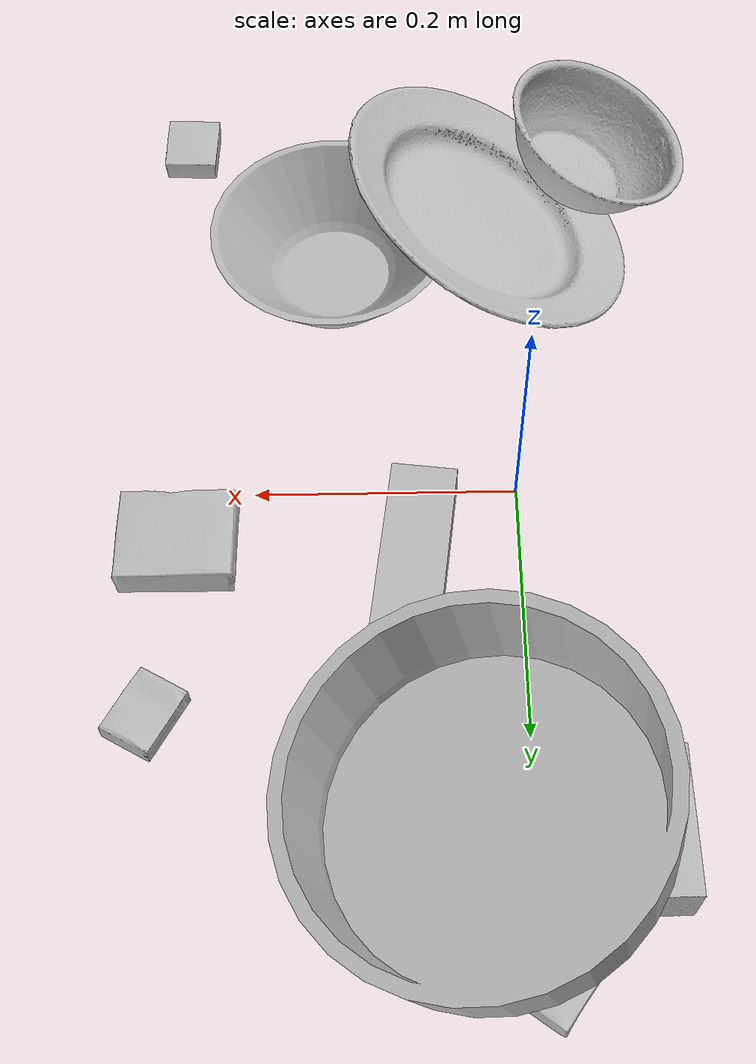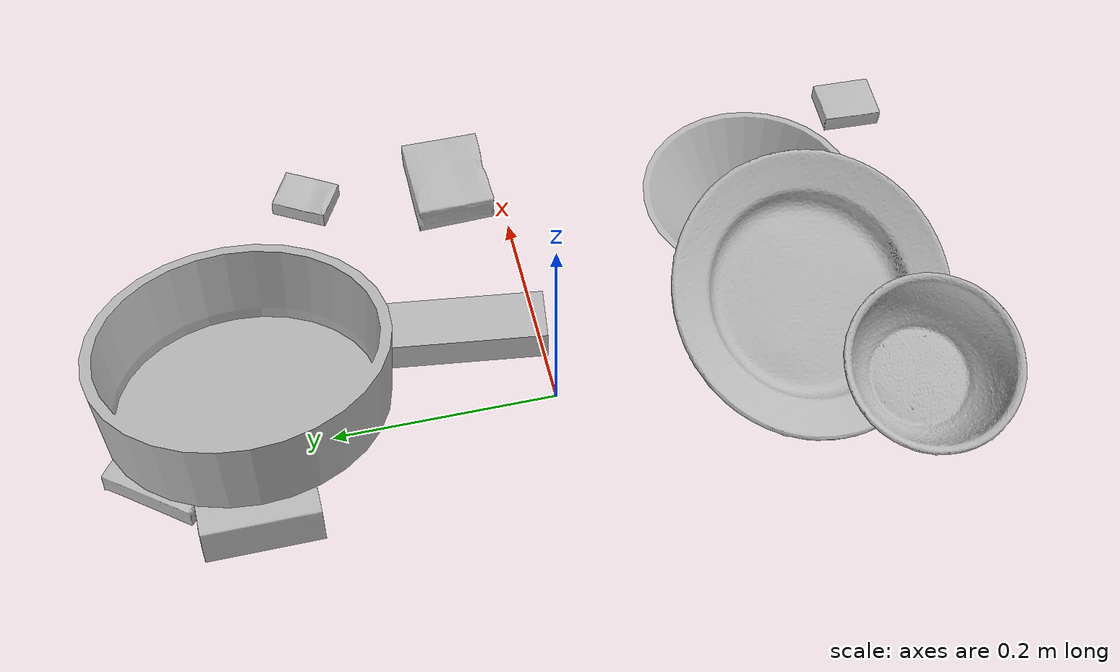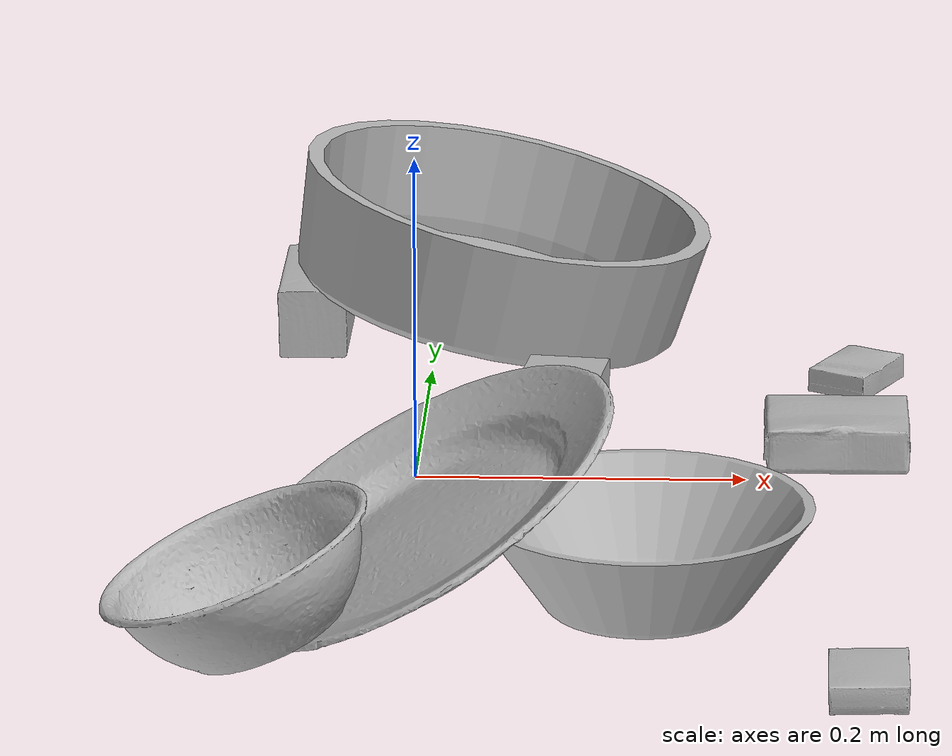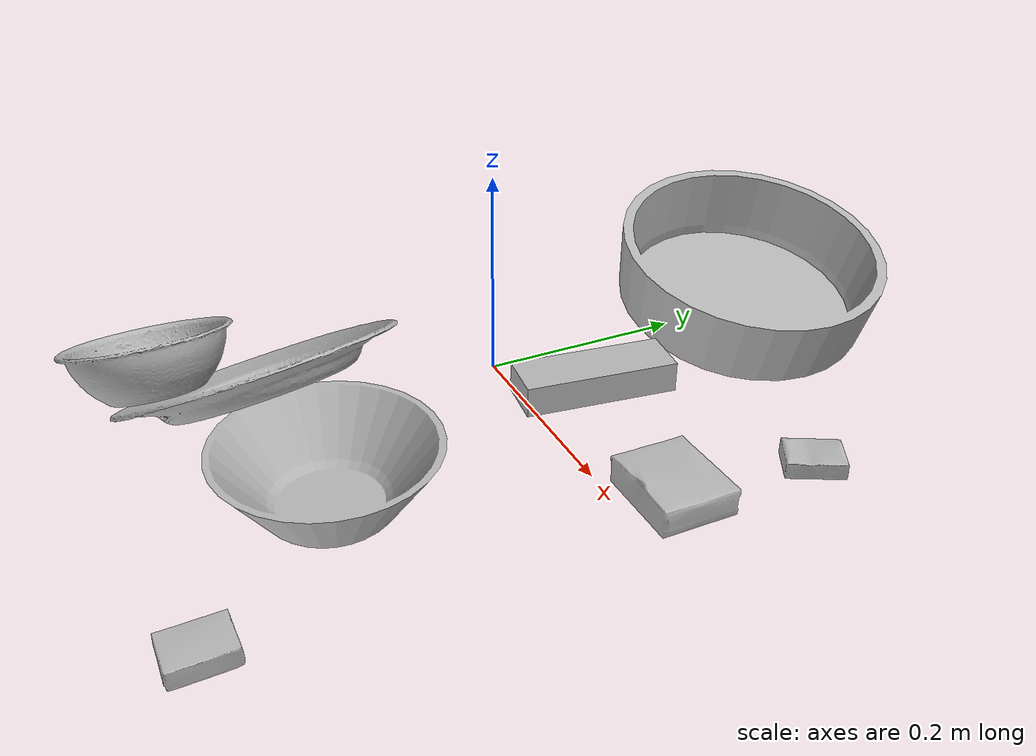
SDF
<sdf version="1.4">
  <world name="default">
    <light name="light1" type="point">
      <pose>0 0 1 0 0 0</pose>
      <diffuse>3 3 3 1</diffuse>
      <specular>3 3 3 1</specular>
    </light>
    <light name="light2" type="point">
      <pose>0 0.5 2 0 0 0</pose>
      <diffuse>1 1 1 1</diffuse>
      <specular>1 1 1 1</specular>
    </light>
    <light name="light3" type="point">
      <pose>0 0.5 2 0 0 0</pose>
      <diffuse>3 3 3 1</diffuse>
      <specular>3 3 3 1</specular>
    </light>
    <scene>
      <ambient>0.7 0.7 0.7</ambient>
    </scene>
    <model name="box1">
      <link name="link_box1">
        <collision name="default">
          <geometry>
            <mesh>
              <uri>model://jenga/collision_meshes/collision.obj</uri>
              <scale>1.0 1.0 1.0</scale>
            </mesh>
          </geometry>
          <surface>
            <friction>
              <ode>
                <mu>0.5</mu>
                <mu2>0.5</mu2>
              </ode>
            </friction>
          <contact>
        <ode>
            <max_vel>0</max_vel>
            <min_depth>0.0001</min_depth>
            <kp>1e8</kp>
        </ode>
    </contact></surface>
        </collision>
        <visual name="default">
          <geometry>
            <mesh>
              <uri>model://jenga/visual_meshes/visual.dae</uri>
              <scale>1.0 1.0 1.0</scale>
            </mesh>
          </geometry>
        </visual>
        <inertial>
          <mass>0.22956150770187378</mass>
          <pose>-2.502855807051674e-07 -0.00010250010382151231 -4.0923401684267446e-05 0.0 -7.34215461761844e-07 0.0</pose>
          <inertia>
            <ixx>6.3525236e-05</ixx>
            <iyy>0.00043044525</iyy>
            <izz>0.0004595369</izz>
            <ixy>0</ixy>
            <ixz>0</ixz>
            <iyz>0</iyz>
          </inertia>
        </inertial>
      </link>
      <pose>0.0795736238360405 0.06837090104818344 0.014999995008111 1.3732741174351192e-08 1.959952462467152e-09 1.4418614960566214</pose>
    </model>
    <model name="box11">
      <link name="link_box11">
        <collision name="default">
          <geometry>
            <mesh>
              <uri>model://gelatin_box/collision_meshes/collision.obj</uri>
              <scale>1.0 1.0 1.0</scale>
            </mesh>
          </geometry>
          <surface>
            <friction>
              <ode>
                <mu>0.5</mu>
                <mu2>0.5</mu2>
              </ode>
            </friction>
          <contact>
        <ode>
            <max_vel>0</max_vel>
            <min_depth>0.0001</min_depth>
            <kp>1e8</kp>
        </ode>
    </contact></surface>
        </collision>
        <visual name="default">
          <geometry>
            <mesh>
              <uri>model://gelatin_box/visual_meshes/visual.dae</uri>
              <scale>1.0 1.0 1.0</scale>
            </mesh>
          </geometry>
        </visual>
        <inertial>
          <mass>0.23979201912879944</mass>
          <pose>0.00043196187471039593 0.00011156872642459348 -0.0003640321083366871 -0.0010503717361155602 -0.00475581776093882 0.016440559470502904</pose>
          <inertia>
            <ixx>0.00016927361</ixx>
            <iyy>0.000120911245</iyy>
            <izz>0.00025767216</izz>
            <ixy>0</ixy>
            <ixz>0</ixz>
            <iyz>0</iyz>
          </inertia>
        </inertial>
      </link>
      <pose>0.25497278571128845 0.04610520228743553 0.015168312005698681 0.005597404583176885 -0.007304471870399134 -1.5768215413557267</pose>
    </model>
    <model name="box2">
      <link name="link_box2">
        <collision name="default">
          <geometry>
            <mesh>
              <uri>model://wood_block/collision_meshes/collision.obj</uri>
              <scale>0.5 0.5 0.5</scale>
            </mesh>
          </geometry>
          <surface>
            <friction>
              <ode>
                <mu>0.5</mu>
                <mu2>0.5</mu2>
              </ode>
            </friction>
          <contact>
        <ode>
            <max_vel>0</max_vel>
            <min_depth>0.0001</min_depth>
            <kp>1e8</kp>
        </ode>
    </contact></surface>
        </collision>
        <visual name="default">
          <geometry>
            <mesh>
              <uri>model://wood_block/visual_meshes/visual.dae</uri>
              <scale>0.5 0.5 0.5</scale>
            </mesh>
          </geometry>
        </visual>
        <inertial>
          <mass>0.1620619148015976</mass>
          <pose>-2.9066577553749084e-06 -0.000285404734313488 0.00013204291462898254 -0.05221116986778199 -0.0051926948812571205 -0.006861377876233232</pose>
          <inertia>
            <ixx>5.421584e-05</ixx>
            <iyy>0.00017126785</iyy>
            <izz>0.00017062723</izz>
            <ixy>0</ixy>
            <ixz>0</ixz>
            <iyz>0</iyz>
          </inertia>
        </inertial>
      </link>
      <pose>-0.07851849496364594 0.2736284136772156 0.022572308778762817 -0.006414173328867186 0.007708978730388556 1.575506523150168</pose>
    </model>
    <model name="box21">
      <link name="link_box21">
        <collision name="default">
          <geometry>
            <mesh>
              <uri>model://cracker_box/collision_meshes/collision.obj</uri>
              <scale>0.25 0.25 0.25</scale>
            </mesh>
          </geometry>
          <surface>
            <friction>
              <ode>
                <mu>0.5</mu>
                <mu2>0.5</mu2>
              </ode>
            </friction>
          <contact>
        <ode>
            <max_vel>0</max_vel>
            <min_depth>0.0001</min_depth>
            <kp>1e8</kp>
        </ode>
    </contact></surface>
        </collision>
        <visual name="default">
          <geometry>
            <mesh>
              <uri>model://cracker_box/visual_meshes/visual.dae</uri>
              <scale>0.25 0.25 0.25</scale>
            </mesh>
          </geometry>
        </visual>
        <inertial>
          <mass>0.053346797823905945</mass>
          <pose>0.0002366035187151283 6.358561950037256e-05 -0.00042573839891701937 -0.0003162075101960104 -0.011106487737771283 0.002546795233856971</pose>
          <inertia>
            <ixx>8.4806525e-06</ixx>
            <iyy>1.40032225e-05</iyy>
            <izz>1.9983887e-05</izz>
            <ixy>0</ixy>
            <ixz>0</ixz>
            <iyz>0</iyz>
          </inertia>
        </inertial>
      </link>
      <pose>0.269243985414505 0.18045814335346222 0.009096027351915836 -0.01405032972104797 -0.005016885925105799 1.0567101450670744</pose>
    </model>
    <model name="box3">
      <link name="link_box3">
        <collision name="default">
          <geometry>
            <mesh>
              <uri>model://pudding_box/collision_meshes/collision.obj</uri>
              <scale>0.5 0.5 0.5</scale>
            </mesh>
          </geometry>
          <surface>
            <friction>
              <ode>
                <mu>0.5</mu>
                <mu2>0.5</mu2>
              </ode>
            </friction>
          <contact>
        <ode>
            <max_vel>0</max_vel>
            <min_depth>0.0001</min_depth>
            <kp>1e8</kp>
        </ode>
    </contact></surface>
        </collision>
        <visual name="default">
          <geometry>
            <mesh>
              <uri>model://pudding_box/visual_meshes/visual.dae</uri>
              <scale>0.5 0.5 0.5</scale>
            </mesh>
          </geometry>
        </visual>
        <inertial>
          <mass>0.03981568291783333</mass>
          <pose>0.00024474109522998333 0.00040339428232982755 -0.00025944141088984907 0.005213101343760943 -0.0066037982384193495 0.020079821436446477</pose>
          <inertia>
            <ixx>1.1252395e-05</ixx>
            <iyy>7.5706907e-06</iyy>
            <izz>1.6617103e-05</izz>
            <ixy>0</ixy>
            <ixz>0</ixz>
            <iyz>0</iyz>
          </inertia>
        </inertial>
      </link>
      <pose>0.2679864466190338 -0.35352933406829834 0.009862900711596012 0.022348498282744895 -0.011391765329932977 -0.013060926580521673</pose>
    </model>
    <model name="box31">
      <link name="link_box31">
        <collision name="default">
          <geometry>
            <mesh>
              <uri>model://sugar_box/collision_meshes/collision.obj</uri>
              <scale>0.5 0.5 0.5</scale>
            </mesh>
          </geometry>
          <surface>
            <friction>
              <ode>
                <mu>0.5</mu>
                <mu2>0.5</mu2>
              </ode>
            </friction>
          <contact>
        <ode>
            <max_vel>0</max_vel>
            <min_depth>0.0001</min_depth>
            <kp>1e8</kp>
        </ode>
    </contact></surface>
        </collision>
        <visual name="default">
          <geometry>
            <mesh>
              <uri>model://sugar_box/visual_meshes/visual.dae</uri>
              <scale>0.5 0.5 0.5</scale>
            </mesh>
          </geometry>
        </visual>
        <inertial>
          <mass>0.09878891706466675</mass>
          <pose>0.0005171863595023751 1.924554817378521e-05 -0.00018182402709499002 -0.0004046259508743568 0.001050663638168667 0.0026153790219137513</pose>
          <inertia>
            <ixx>2.0577656e-05</ixx>
            <iyy>6.651122e-05</iyy>
            <izz>7.9621874e-05</izz>
            <ixy>0</ixy>
            <ixz>0</ixz>
            <iyz>0</iyz>
          </inertia>
        </inertial>
      </link>
      <pose>-0.01745007373392582 0.35143131017684937 0.011399305425584316 0.0007753948291212909 -0.023433258254615442 0.9161450363281923</pose>
    </model>
    <model name="plate1">
      <link name="link_plate1">
        <collision name="default">
          <geometry>
            <mesh>
              <uri>model://pan_tefal/collision_meshes/collision.obj</uri>
              <scale>1.0 1.0 1.0</scale>
            </mesh>
          </geometry>
          <surface>
            <friction>
              <ode>
                <mu>0.5</mu>
                <mu2>0.5</mu2>
              </ode>
            </friction>
          <contact>
        <ode>
            <max_vel>0</max_vel>
            <min_depth>0.0001</min_depth>
            <kp>1e8</kp>
        </ode>
    </contact></surface>
        </collision>
        <visual name="default">
          <geometry>
            <mesh>
              <uri>model://pan_tefal/visual_meshes/visual.dae</uri>
              <scale>1.0 1.0 1.0</scale>
            </mesh>
          </geometry>
        </visual>
        <inertial>
          <mass>1.1273940801620483</mass>
          <pose>-0.00018001534044742584 3.279306838521734e-05 -0.00851493701338768 0.0008190361817388816 -0.00033014848142065665 -0.3318599615030245</pose>
          <inertia>
            <ixx>0.007782347</ixx>
            <iyy>0.00783252</iyy>
            <izz>0.014325799</izz>
            <ixy>0</ixy>
            <ixz>0</ixz>
            <iyz>0</iyz>
          </inertia>
        </inertial>
      </link>
      <pose>0.038573380559682846 0.2669629454612732 0.0629212036728859 0.03453802244409048 0.21176435257924528 0.18876346353061255</pose>
    </model>
    <model name="bowl1">
      <link name="link_bowl1">
        <collision name="default">
          <geometry>
            <mesh>
              <uri>model://bowl_a/collision_meshes/collision.obj</uri>
              <scale>1.0 1.0 1.0</scale>
            </mesh>
          </geometry>
          <surface>
            <friction>
              <ode>
                <mu>0.5</mu>
                <mu2>0.5</mu2>
              </ode>
            </friction>
          <contact>
        <ode>
            <max_vel>0</max_vel>
            <min_depth>0.0001</min_depth>
            <kp>1e8</kp>
        </ode>
    </contact></surface>
        </collision>
        <visual name="default">
          <geometry>
            <mesh>
              <uri>model://bowl_a/visual_meshes/visual.dae</uri>
              <scale>1.0 1.0 1.0</scale>
            </mesh>
          </geometry>
        </visual>
        <inertial>
          <mass>0.3873887062072754</mass>
          <pose>0.00027867493918165565 4.731054286821745e-05 -0.0013765293406322598 -0.0009805472575270138 -0.0010938146264646796 -0.19122952428204854</pose>
          <inertia>
            <ixx>0.0011029133</ixx>
            <iyy>0.0011096848</iyy>
            <izz>0.001961574</izz>
            <ixy>0</ixy>
            <ixz>0</ixz>
            <iyz>0</iyz>
          </inertia>
        </inertial>
      </link>
      <pose>0.14157834649085999 -0.21498757600784302 0.030384346842765808 0.000198765042421191 -2.225922369576172e-05 -1.4884327987727448</pose>
    </model>
    <model name="plate2">
      <link name="link_plate2">
        <collision name="default">
          <geometry>
            <mesh>
              <uri>model://plate/collision_meshes/collision.obj</uri>
              <scale>1.0 1.0 1.0</scale>
            </mesh>
          </geometry>
          <surface>
            <friction>
              <ode>
                <mu>0.5</mu>
                <mu2>0.5</mu2>
              </ode>
            </friction>
          <contact>
        <ode>
            <max_vel>0</max_vel>
            <min_depth>0.0001</min_depth>
            <kp>1e8</kp>
        </ode>
    </contact></surface>
        </collision>
        <visual name="default">
          <geometry>
            <mesh>
              <uri>model://plate/visual_meshes/visual.dae</uri>
              <scale>1.0 1.0 1.0</scale>
            </mesh>
          </geometry>
        </visual>
        <inertial>
          <mass>0.13866961002349854</mass>
          <pose>-0.0006044620531611145 0.0002782586379908025 -0.0010561972158029675 0.0022187857877866432 -0.0032254843385796767 0.452609315183835</pose>
          <inertia>
            <ixx>0.0006486992</ixx>
            <iyy>0.0006424946</iyy>
            <izz>0.0012687586</izz>
            <ixy>0</ixy>
            <ixz>0</ixz>
            <iyz>0</iyz>
          </inertia>
        </inertial>
      </link>
      <pose>0.015794333070516586 -0.2341795414686203 0.057463087141513824 -0.2959569786544612 0.43779164969773726 2.753776279309289</pose>
    </model>
    <model name="bowl2">
      <link name="link_bowl2">
        <collision name="default">
          <geometry>
            <mesh>
              <uri>model://bowl/collision_meshes/collision.obj</uri>
              <scale>1.0 1.0 1.0</scale>
            </mesh>
          </geometry>
          <surface>
            <friction>
              <ode>
                <mu>0.5</mu>
                <mu2>0.5</mu2>
              </ode>
            </friction>
          <contact>
        <ode>
            <max_vel>0</max_vel>
            <min_depth>0.0001</min_depth>
            <kp>1e8</kp>
        </ode>
    </contact></surface>
        </collision>
        <visual name="default">
          <geometry>
            <mesh>
              <uri>model://bowl/visual_meshes/visual.dae</uri>
              <scale>1.0 1.0 1.0</scale>
            </mesh>
          </geometry>
        </visual>
        <inertial>
          <mass>0.04854629561305046</mass>
          <pose>0.00020445325935725123 -0.0010302069131284952 -0.0008042645058594644 -0.015764106240563104 0.014546770392749554 0.7140394241749954</pose>
          <inertia>
            <ixx>0.00011151466</ixx>
            <iyy>0.00010902299</iyy>
            <izz>0.00018760598</izz>
            <ixy>0</ixy>
            <ixz>0</ixz>
            <iyz>0</iyz>
          </inertia>
        </inertial>
      </link>
      <pose>-0.07501737028360367 -0.31371423602104187 0.04243820533156395 0.3612482428836653 -0.16124456225348718 -1.1105005696046322</pose>
    </model>
  <physics type="ode">
      <max_contacts>50</max_contacts>
      <ode>
        <solver>
          <type>quick</type>
          <iters>75</iters>
        </solver>
        <constraints>
          <contact_max_correcting_vel>0</contact_max_correcting_vel>
          <contact_surface_layer>0</contact_surface_layer>
        </constraints>
      </ode>
    </physics></world>
</sdf>
